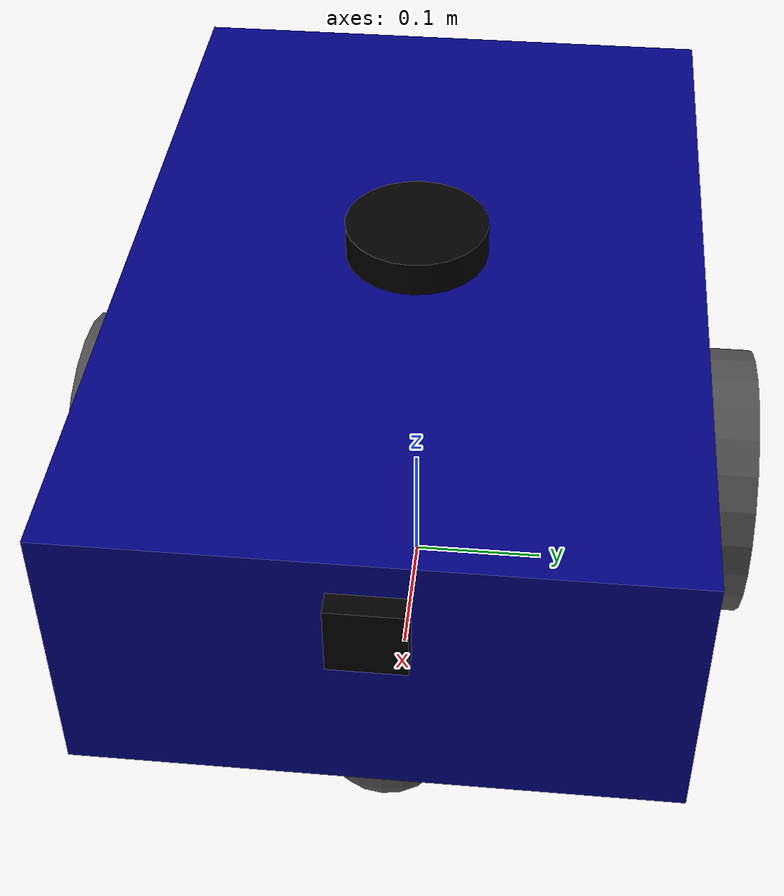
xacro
<?xml version="1.0"?>
<robot name="square_robot" xmlns:xacro="http://www.ros.org/wiki/xacro">

    <xacro:arg name="robot_name" default="robot"/>
    <xacro:arg name="tf_prefix" default="$(arg robot_name)"/>

    <xacro:property name="tf_prefix" value="$(arg tf_prefix)" />
    <xacro:property name="robot_name" value="$(arg robot_name)" />

    <xacro:include filename="common_properties.xacro" />
    <xacro:include filename="mobile_base.xacro" />
    <xacro:include filename="mobile_base_gazebo.xacro" />
    <xacro:include filename="lidar_sensor.xacro"/>
    <xacro:include filename="imu_sensor.xacro"/>
    <xacro:include filename="camera.xacro"/>

</robot>

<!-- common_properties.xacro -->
<robot name="square_robot" xmlns:xacro="http://www.ros.org/wiki/xacro">

    <material name="blue">
        <color rgba="0 0 0.5 1" />
    </material>

    <material name="grey">
        <color rgba="0.3 0.3 0.3 1" />
    </material>

    <material name="black">
        <color rgba="0.0 0.0 0.0 1" />
    </material>

    <xacro:macro name="box_inertia" params="m x y z o_xyz o_rpy">
        <inertial>
            <mass value="${m}" />
            <origin xyz="${o_xyz}" rpy="${o_rpy}" />
            <inertia ixx="${(m/12) * (y*y + z*z)}" ixy="0" ixz="0"
                     iyy="${(m/12) * (x*x + z*z)}" iyz="0"
                     izz="${(m/12) * (x*x + y*y)}" />
        </inertial>
    </xacro:macro>

    <xacro:macro name="cylinder_inertia" params="m r l o_xyz o_rpy">
        <inertial>
            <mass value="${m}" />
            <origin xyz="${o_xyz}" rpy="${o_rpy}" />
            <inertia ixx="${(m/12) * (3*r*r + l*l)}" ixy="0" ixz="0"
                     iyy="${(m/12) * (3*r*r + l*l)}" iyz="0"
                     izz="${(m/2) * (r*r)}" />
        </inertial>
    </xacro:macro>

    <xacro:macro name="sphere_inertia" params="m r o_xyz o_rpy">
        <inertial>
            <mass value="${m}" />
            <origin xyz="${o_xyz}" rpy="${o_rpy}" />
            <inertia ixx="${(2/5) * m * r * r}" ixy="0" ixz="0"
                     iyy="${(2/5) * m * r * r}" iyz="0"
                     izz="${(2/5) * m * r * r}" />
        </inertial>
    </xacro:macro>

</robot>

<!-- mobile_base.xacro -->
<robot name="square_robot" xmlns:xacro="http://www.ros.org/wiki/xacro">

    <xacro:property name="base_length" value="0.6" />
    <xacro:property name="base_width" value="0.4" />
    <xacro:property name="base_height" value="0.2" />
    <xacro:property name="wheel_radius" value="0.1" />
    <xacro:property name="wheel_length" value="0.05" />

    <!-- Base Footprint -->
    <link name="base_footprint" />

    <!-- Base Link (Square Chassis) -->
    <link name="base_link">
        <visual>
            <geometry>
                <box size="${base_length} ${base_width} ${base_height}" />
            </geometry>
            <origin xyz="0 0 0.1" rpy="0 0 0" />
            <material name="blue"/>
        </visual>
        <collision>
            <geometry>
                <box size="${base_length} ${base_width} ${base_height}" />
            </geometry>
            <origin xyz="0 0 0.1" rpy="0 0 0" />
        </collision>
        <xacro:box_inertia m="10.0" x="${base_length}" y="${base_width}" z="${base_height}"
                          o_xyz="0 0 ${base_height / 2.0}" o_rpy="0 0 0" />
    </link>

    <!-- Right Wheel Link -->
    <link name="right_wheel_link">
        <visual>
            <geometry>
                <cylinder radius="${wheel_radius}" length="${wheel_length}" />
            </geometry>
            <origin xyz="0 0 0" rpy="1.5708 0 0" />
            <material name="grey"/>
        </visual>
        <collision>
            <geometry>
                <sphere radius="${wheel_radius}" />
            </geometry>
            <origin xyz="0 0 0" rpy="0 0 0" />
            <surface>
                <friction>
                    <ode>
                        <mu>8.0</mu>
                        <mu2>8.0</mu2>
                    </ode>
                </friction>
            </surface>
        </collision>
        <xacro:cylinder_inertia m="8.0" r="${wheel_radius}" l="${wheel_length}"
                                   o_xyz="0 0 0" o_rpy="${pi / 2.0} 0 0" />
    </link>

    <!-- Left Wheel Link -->
    <link name="left_wheel_link">
        <visual>
            <geometry>
                <cylinder radius="${wheel_radius}" length="${wheel_length}" />
            </geometry>
            <origin xyz="0 0 0" rpy="1.5708 0 0" />
            <material name="grey"/>
        </visual>
        <collision>
            <geometry>
                <sphere radius="${wheel_radius}" />
            </geometry>
            <origin xyz="0 0 0" rpy="0 0 0" />
            <surface>
                <friction>
                    <ode>
                        <mu>8.0</mu>
                        <mu2>8.0</mu2>
                    </ode>
                </friction>
            </surface>
        </collision>
        <xacro:cylinder_inertia m="8.0" r="${wheel_radius}" l="${wheel_length}"
                                   o_xyz="0 0 0" o_rpy="${pi / 2.0} 0 0" />
    </link>

    <!-- Front Caster Wheel Link -->
    <link name="caster_wheel_link">
        <visual>
            <geometry>
                <sphere radius="${wheel_radius / 2.0}" />
            </geometry>
            <origin xyz="0 0 0" rpy="0 0 0" />
            <material name="grey" />
        </visual>
        <collision>
            <geometry>
                <sphere radius="${wheel_radius / 2.0}" />
            </geometry>
            <origin xyz="0 0 0" rpy="0 0 0" />
        </collision>
        <xacro:sphere_inertia m="2.0" r="${wheel_radius / 2.0}"
                             o_xyz="0 0 0" o_rpy="0 0 0" />
    </link>

     <!-- Front Caster Wheel Link rod -->
    <link name="caster_wheel_link_rod">
        <visual>
            <geometry>
                <cylinder radius="${wheel_radius / 2.0}" length="${wheel_radius / 2.0}" />
            </geometry>
            <origin xyz="0 0 0" rpy="0 0 1.5708" />
            <material name="grey" />
        </visual>
        <collision>
            <geometry>
                <cylinder radius="${wheel_radius / 2.0}" length="${wheel_radius / 2.0}" />
            </geometry>
            <origin xyz="0 0 0" rpy="0 0 0" />
        </collision>
       <xacro:sphere_inertia m="2.0" r="${wheel_radius / 2.0}"
                             o_xyz="0 0 0" o_rpy="0 0 0" />
    </link>

    <!-- Back Caster Wheel Link -->
    <link name="caster_wheel_link2">
        <visual>
            <geometry>
                <sphere radius="${wheel_radius / 2.0}" />
            </geometry>
            <origin xyz="0 0 0" rpy="0 0 0" />
            <material name="grey" />
        </visual>
        <collision>
            <geometry>
                <sphere radius="${wheel_radius / 2.0}" />
            </geometry>
            <origin xyz="0 0 0" rpy="0 0 0" />
        </collision>
       <xacro:sphere_inertia m="2.0" r="${wheel_radius / 2.0}"
                             o_xyz="0 0 0" o_rpy="0 0 0" />
    </link>

     <!-- back Caster Wheel Link rod -->
    <link name="caster_wheel_link_rod2">
        <visual>
            <geometry>
                <cylinder radius="${wheel_radius / 2.0}" length="${wheel_radius / 2.0}" />
            </geometry>
            <origin xyz="0 0 0" rpy="0 0 1.5708" />
            <material name="grey" />
        </visual>
        <collision>
            <geometry>
                <cylinder radius="${wheel_radius / 2.0}" length="${wheel_radius / 2.0}" />
            </geometry>
            <origin xyz="0 0 0" rpy="0 0 0" />
        </collision>
        <xacro:sphere_inertia m="2.0" r="${wheel_radius / 2.0}"
                             o_xyz="0 0 0" o_rpy="0 0 0" />
    </link>

    <!-- Joints -->
    <!-- Base Joint -->
    <joint name="base_joint" type="fixed">
        <parent link="base_footprint" />
        <child link="base_link" />
        <origin xyz="0 0 0.1" rpy="0 0 0"/>
    </joint>

    <!-- Right Wheel Joint -->
    <joint name="base_right_wheel_joint" type="continuous">
        <parent link="base_link" />
        <child link="right_wheel_link" />
        <origin xyz="0 -${base_width / 2.0 + wheel_length / 2.0} 0" rpy="0 0 0" />
        <axis xyz="0 1 0" />
    </joint>

    <!-- Left Wheel Joint -->
    <joint name="base_left_wheel_joint" type="continuous">
        <parent link="base_link" />
        <child link="left_wheel_link" />
        <origin xyz="0 ${base_width / 2.0 + wheel_length / 2.0} 0" rpy="0 0 0" />
        <axis xyz="0 1 0" />
    </joint>

    <!-- Front Caster Wheel Joint -->
    <joint name="base_caster_wheel_joint" type="fixed">
        <parent link="base_link" />
        <child link="caster_wheel_link" />
        <origin xyz="${base_length / 2.8} 0 -${wheel_radius / 2.0}" rpy="0 0 0" />
    </joint>

    <!-- Front Caster Wheel Joint rod-->
    <joint name="base_caster_wheel_rod_joint" type="fixed">
        <parent link="base_link" />
        <child link="caster_wheel_link_rod" />
        <origin xyz="${base_length / 2.8} 0 -${wheel_radius / 4.0}" rpy="0 0 0" />
    </joint>

    <!-- Back Caster Wheel Joint -->
    <joint name="base_caster_wheel_joint2" type="fixed">
        <parent link="base_link" />
        <child link="caster_wheel_link2" />
        <origin xyz="-${base_length / 2.8} 0 -${wheel_radius / 2.0}" rpy="0 0 0" />
    </joint>

    <!-- Back Caster Wheel Joint rod-->
    <joint name="base_caster_wheel_rod_joint2" type="fixed">
        <parent link="base_link" />
        <child link="caster_wheel_link_rod2" />
        <origin xyz="-${base_length / 2.8} 0 -${wheel_radius / 4.0}" rpy="0 0 0" />
    </joint>

</robot>

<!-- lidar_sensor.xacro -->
<robot xmlns:xacro="http://ros.org/wiki/xacro">

  <xacro:property name="lidar_link_name" value="lidar_link"/>
  <xacro:property name="lidar_joint_name" value="lidar_joint"/>
  <xacro:property name="lidar_frame" value="lidar_frame"/>
  <xacro:property name="lidar_mass" value="0.5"/>
  <xacro:property name="lidar_xyz" value="0 0 0.2"/>

  <link name="${lidar_link_name}">
    <visual>
      <geometry>
        <cylinder length="0.05" radius="0.05"/>
      </geometry>
      <origin xyz="0 0 0" rpy="0 0 0"/>
      <material name="black"/>
    </visual>
    <collision>
      <geometry>
        <cylinder length="0.05" radius="0.05"/>
      </geometry>
      <origin xyz="0 0 0" rpy="0 0 0"/>
    </collision>
    <inertial>
      <mass value="${lidar_mass}"/>
      <inertia ixx="0.001" iyy="0.001" izz="0.001" ixy="0.0" ixz="0.0" iyz="0.0"/>
    </inertial>
  </link>

  <joint name="${lidar_joint_name}" type="fixed">
    <parent link="base_link"/>
    <child link="${lidar_link_name}"/>
    <origin xyz="${lidar_xyz}" rpy="0 0 0"/>
  </joint>

</robot>

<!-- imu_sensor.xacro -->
<robot name="square_robot" xmlns:xacro="http://www.ros.org/wiki/xacro">

  <xacro:property name="imu_link_name" value="imu_link"/>
  <xacro:property name="imu_joint_name" value="imu_joint"/>
  <xacro:property name="imu_frame" value="imu_frame"/>
  <xacro:property name="imu_xyz" value="0 0 0.1"/>

  <link name="${imu_link_name}">
    <visual>
      <geometry>
        <box size="0.05 0.05 0.02"/>
      </geometry>
      <origin xyz="0 0 0" rpy="0 0 0"/>
      <material name="black"/>
    </visual>
    <collision>
      <geometry>
        <box size="0.05 0.05 0.02"/>
      </geometry>
      <origin xyz="0 0 0" rpy="0 0 0"/>
    </collision>
    <inertial>
      <mass value="0.1"/>
      <inertia ixx="0.0001" ixy="0.0" ixz="0.0" iyy="0.0001" iyz="0.0" izz="0.0001"/>
    </inertial>
  </link>

  <joint name="${imu_joint_name}" type="fixed">
    <parent link="base_link"/>
    <child link="${imu_link_name}"/>
    <origin xyz="${imu_xyz}" rpy="0 0 0"/>
  </joint>

</robot>

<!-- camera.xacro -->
<robot xmlns:xacro="http://ros.org/wiki/xacro">

  <!-- Properties (adjust position/orientation as needed) -->
  <xacro:property name="camera_link_name" value="camera_link"/>
  <xacro:property name="camera_joint_name" value="camera_joint"/>
  <xacro:property name="camera_frame" value="camera_frame"/>
  <xacro:property name="camera_mass" value="0.1"/>
  <xacro:property name="camera_xyz" value="${base_length/2} 0 0.15"/>   <!-- front, center, above base_link -->
  <xacro:property name="camera_rpy" value="0 0 0"/>

  <!-- Camera link (visual, collision, inertial) -->
  <link name="${camera_link_name}">
    <visual>
      <geometry>
        <box size="0.03 0.05 0.05"/>
      </geometry>
      <origin xyz="0 0 0" rpy="0 0 0"/>
      <material name="black"/>
    </visual>
    <collision>
      <geometry>
        <box size="0.03 0.05 0.05"/>
      </geometry>
      <origin xyz="0 0 0" rpy="0 0 0"/>
    </collision>
    <inertial>
      <mass value="${camera_mass}"/>
      <inertia ixx="0.0001" ixy="0.0" ixz="0.0" iyy="0.0001" iyz="0.0" izz="0.0001"/>
    </inertial>
  </link>

  <!-- Fixed joint attaching camera to base_link -->
  <joint name="${camera_joint_name}" type="fixed">
    <parent link="base_link"/>
    <child link="${camera_link_name}"/>
    <origin xyz="${camera_xyz}" rpy="${camera_rpy}"/>
  </joint>

  <!-- Gazebo sensor plugin for RGB camera -->
  <gazebo reference="${camera_link_name}">
    <sensor name="rgb_camera" type="camera">
      <pose>0 0 0 0 0 0</pose>                     <!-- relative to link -->
      <update_rate>30</update_rate>
      <always_on>true</always_on>
      <visualize>true</visualize>
      <topic>/${robot_name}/camera/image_raw</topic>
      <gz_frame_id>${camera_frame}</gz_frame_id>
      <camera>
        <horizontal_fov>1.047</horizontal_fov>
        <image>
          <width>640</width>
          <height>480</height>
          <format>R8G8B8</format>                  <!-- 24‑bit color -->
        </image>
        <clip>
          <near>0.1</near>
          <far>100.0</far>
        </clip>
        <noise>
          <type>gaussian</type>
          <mean>0.0</mean>
          <stddev>0.007</stddev>                   <!-- small noise -->
        </noise>
      </camera>
    </sensor>
  </gazebo>

</robot>
